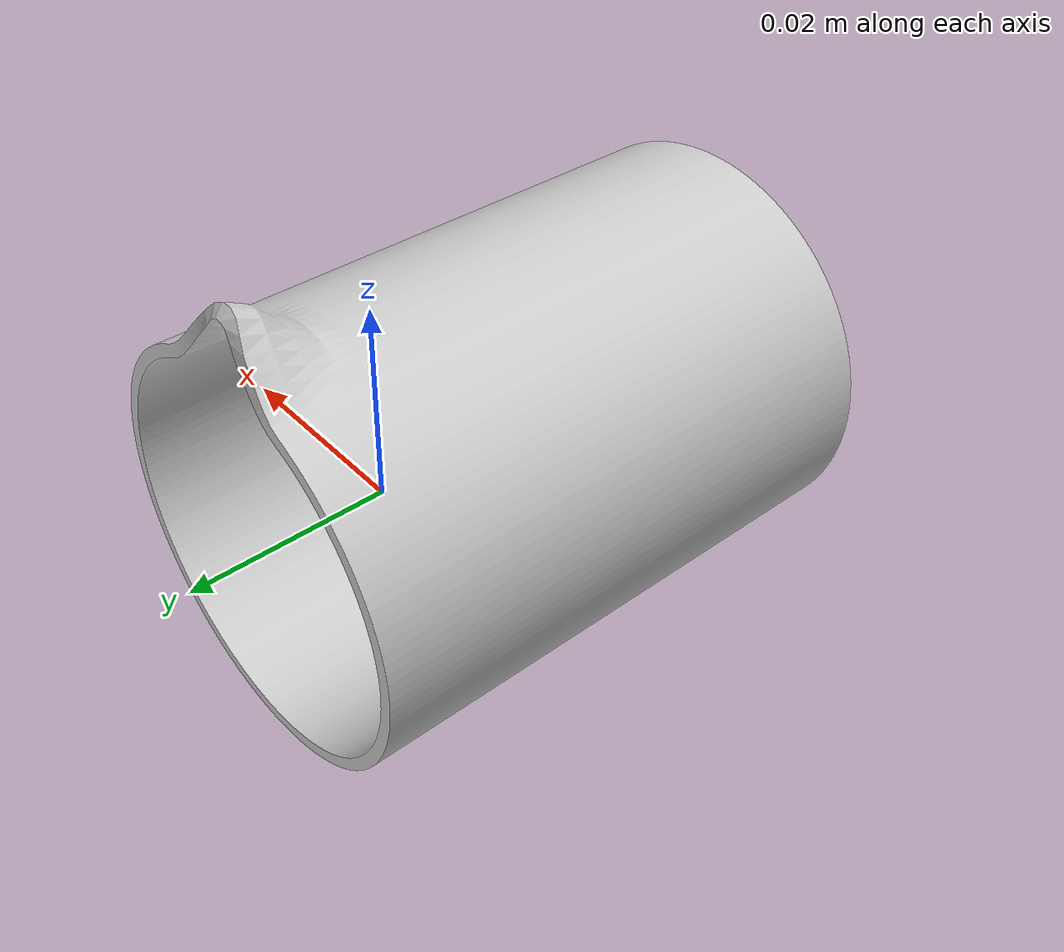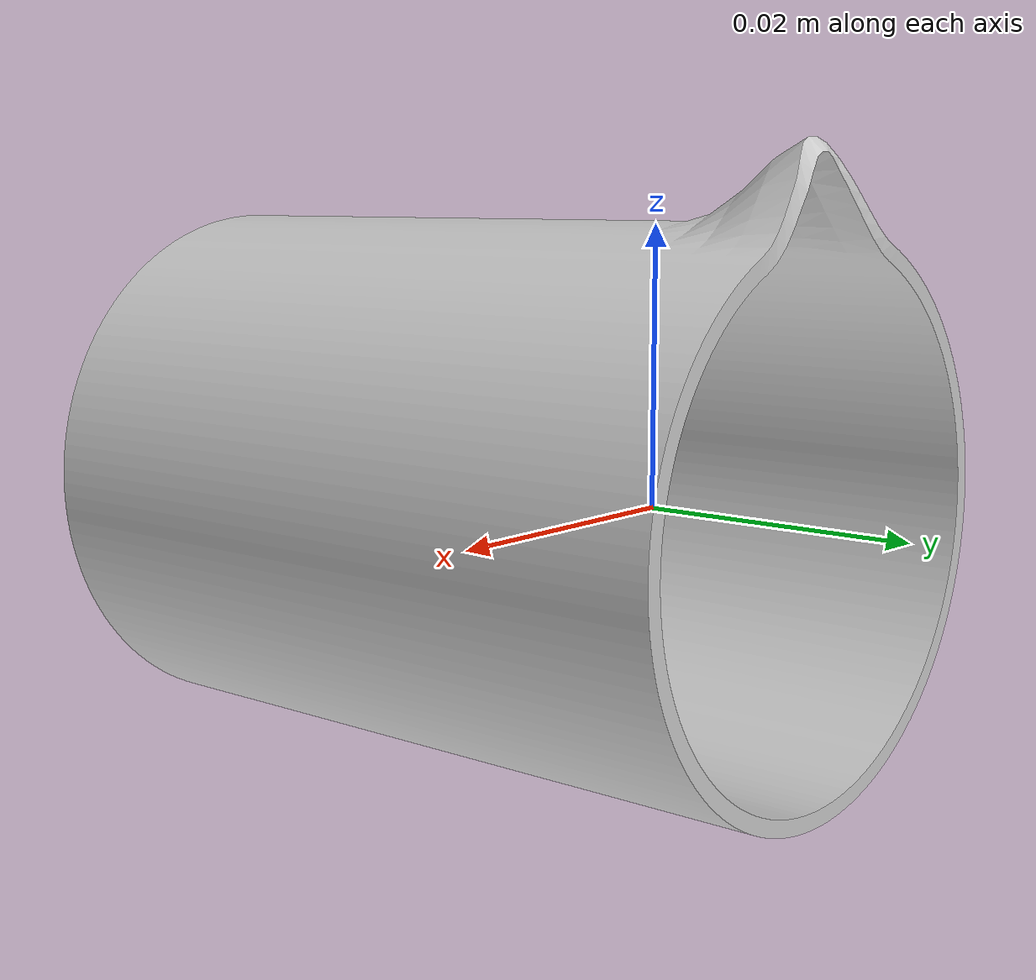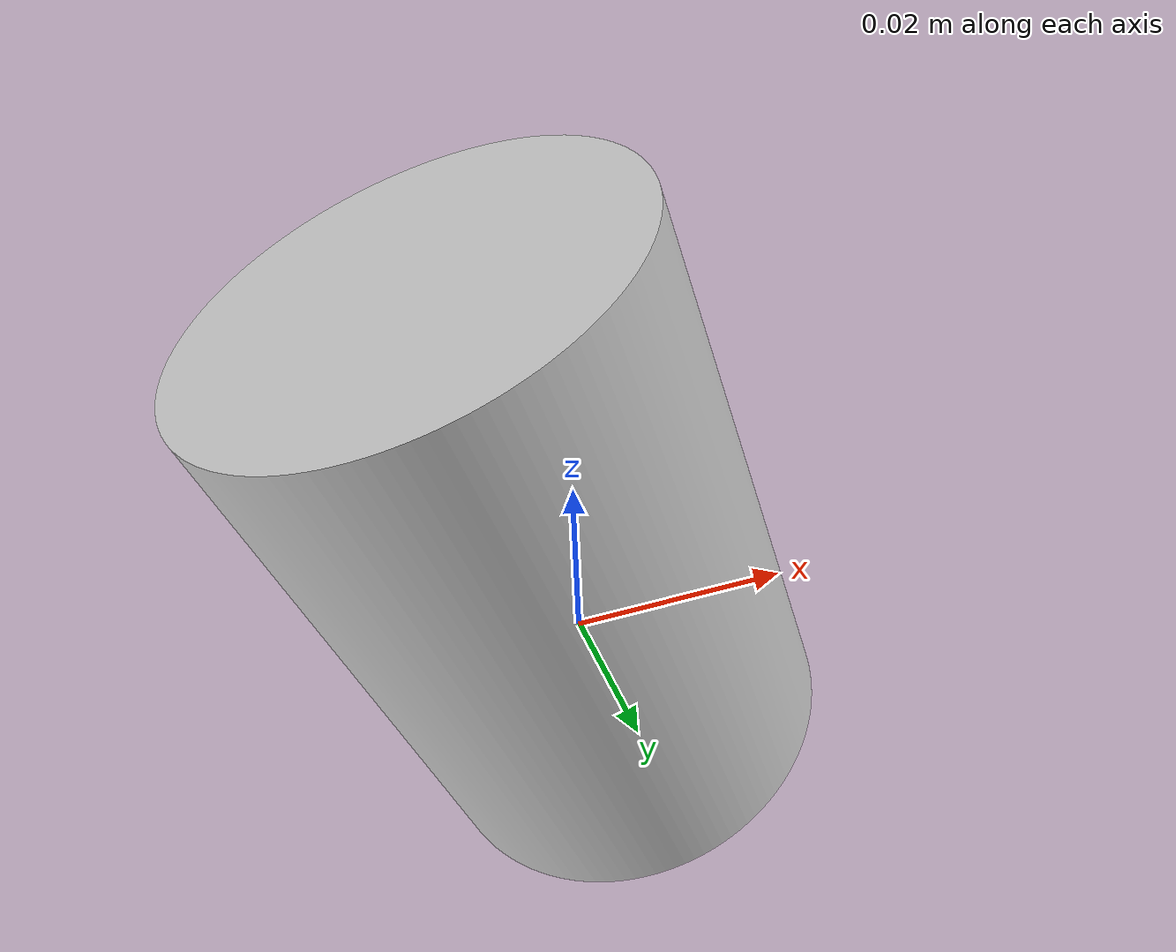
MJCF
<mujoco model="beaker_thick">
  <default>
    <default class="visual">
      <geom group="2" type="mesh" contype="0" conaffinity="0"/>
    </default>
    <default class="collision">
      <geom group="3" type="mesh"/>
    </default>
  </default>
  <asset>
    <material name="Material.001" specular="0.5" shininess="0.36" rgba="0.800000 0.800000 0.800000 1.000000"/>
    <material name="Material.003" specular="0.5" shininess="0.36" rgba="0.800000 0.800000 0.800000 1.000000"/>
    <mesh file="beaker_thick_0.obj"/>
    <mesh file="beaker_thick_1.obj"/>
    <mesh file="beaker_thick_collision_0.obj"/>
    <mesh file="beaker_thick_collision_1.obj"/>
    <mesh file="beaker_thick_collision_2.obj"/>
    <mesh file="beaker_thick_collision_3.obj"/>
    <mesh file="beaker_thick_collision_4.obj"/>
    <mesh file="beaker_thick_collision_5.obj"/>
    <mesh file="beaker_thick_collision_6.obj"/>
    <mesh file="beaker_thick_collision_7.obj"/>
    <mesh file="beaker_thick_collision_8.obj"/>
    <mesh file="beaker_thick_collision_9.obj"/>
    <mesh file="beaker_thick_collision_10.obj"/>
    <mesh file="beaker_thick_collision_11.obj"/>
    <mesh file="beaker_thick_collision_12.obj"/>
    <mesh file="beaker_thick_collision_13.obj"/>
    <mesh file="beaker_thick_collision_14.obj"/>
  </asset>
  <worldbody>
    <body name="beaker_thick">
      <geom mesh="beaker_thick_0" material="Material.003" class="visual"/>
      <geom mesh="beaker_thick_1" material="Material.001" class="visual"/>
      <geom mesh="beaker_thick_collision_0" rgba="0.7034542333035136 0.515803860757033 0.06185202740314333 1" class="collision"/>
      <geom mesh="beaker_thick_collision_1" rgba="0.8301424759518948 0.36559477840014665 0.08333919171150828 1" class="collision"/>
      <geom mesh="beaker_thick_collision_2" rgba="0.28818759950894957 0.9004405078482162 0.6857251367374735 1" class="collision"/>
      <geom mesh="beaker_thick_collision_3" rgba="0.003971063587511758 0.5162616655765828 0.11674790284369563 1" class="collision"/>
      <geom mesh="beaker_thick_collision_4" rgba="0.9334126956290363 0.8486259075534203 0.8465023620337192 1" class="collision"/>
      <geom mesh="beaker_thick_collision_5" rgba="0.055516257626981425 0.887288126565418 0.27971796233730706 1" class="collision"/>
      <geom mesh="beaker_thick_collision_6" rgba="0.748192118133273 0.9109334468917664 0.43850234344978056 1" class="collision"/>
      <geom mesh="beaker_thick_collision_7" rgba="0.7344543322702966 0.07812156850236374 0.47490920933598746 1" class="collision"/>
      <geom mesh="beaker_thick_collision_8" rgba="0.7118697243680853 0.6426188136722661 0.6531794467419586 1" class="collision"/>
      <geom mesh="beaker_thick_collision_9" rgba="0.08975985221920513 0.7303822876955254 0.9333432520976888 1" class="collision"/>
      <geom mesh="beaker_thick_collision_10" rgba="0.9802250739611091 0.28442538087729496 0.25231015611190555 1" class="collision"/>
      <geom mesh="beaker_thick_collision_11" rgba="0.3528124369674104 0.2053534747415322 0.14445544819304923 1" class="collision"/>
      <geom mesh="beaker_thick_collision_12" rgba="0.8960080091531409 0.4585460831940713 0.5269263272438259 1" class="collision"/>
      <geom mesh="beaker_thick_collision_13" rgba="0.030489702221157544 0.04038578733759479 0.4329273704747969 1" class="collision"/>
      <geom mesh="beaker_thick_collision_14" rgba="0.6876562844442433 0.032388129780858366 0.521431914064469 1" class="collision"/>
    </body>
  </worldbody>
</mujoco>
